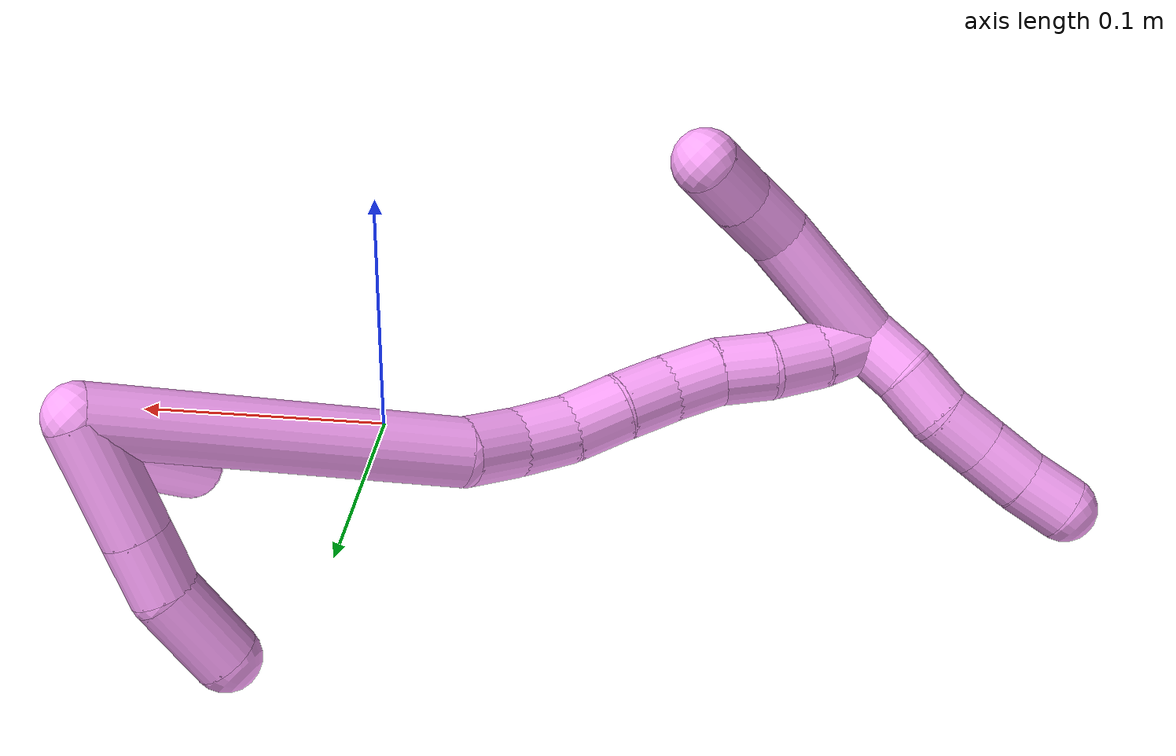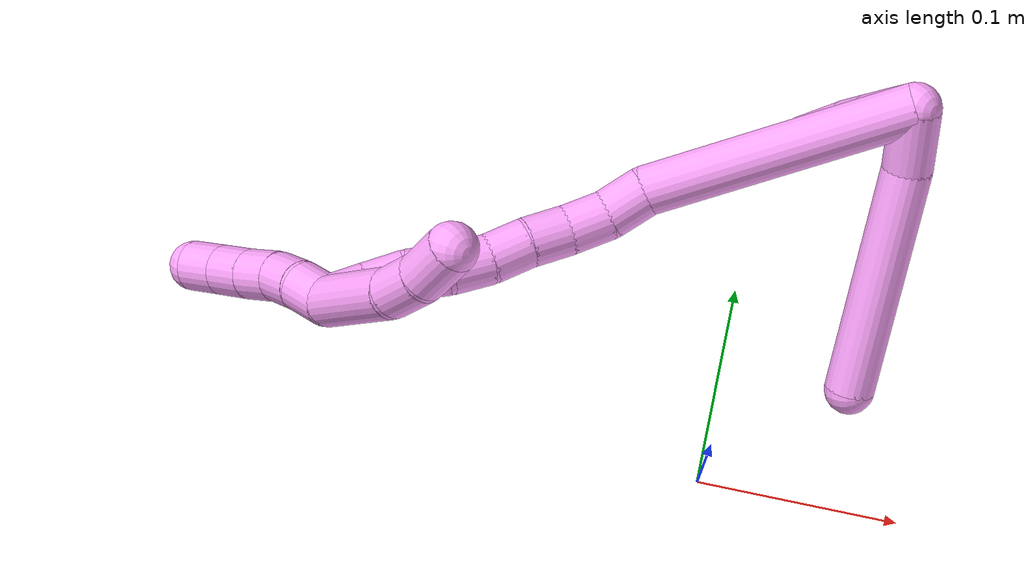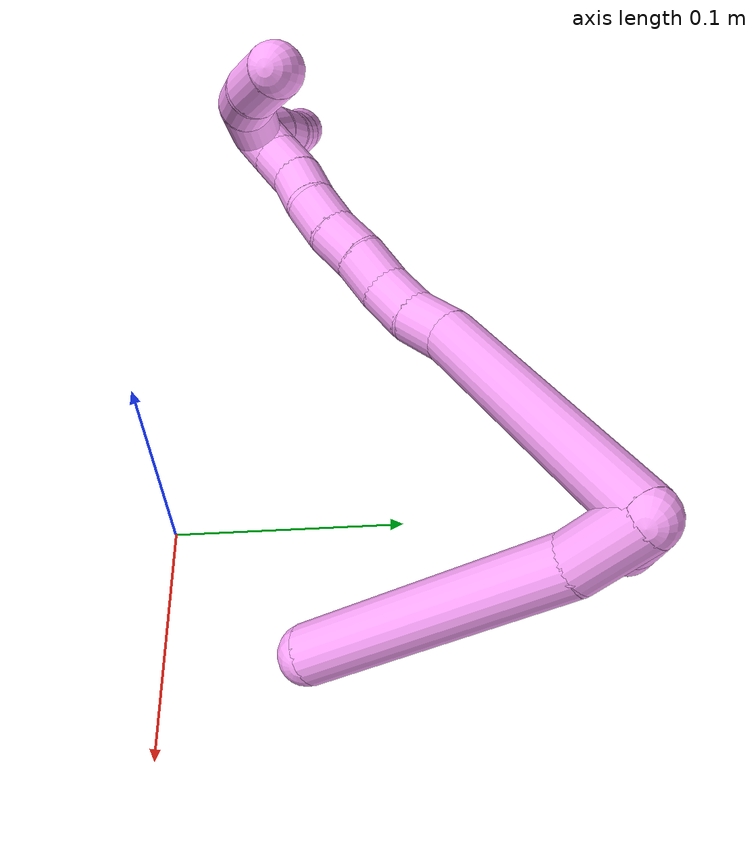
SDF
<sdf version="1.7">
 <world name="default">
  <model name="4">
   <static>0</static>
   <link name="4">
    <collision name="collision-cylinder-e_1_2_8">
     <pose>-0.005884 0.01501 0.002668 -1.39486 -0.368328 0.309664</pose>
     <geometry><cylinder><radius>0.0125</radius><length>0.032683</length></cylinder></geometry>
     <surface>
      <friction><ode><mu>1.16</mu><mu2>1.16</mu2><slip1>0</slip1><slip2>0</slip2></ode></friction>
      <contact><ode><kp>1e+06</kp><kd>1</kd><max_vel>0</max_vel><min_depth>0.001</min_depth></ode></contact>
     </surface>
    </collision>
    <visual name="visual-cylinder-e_1_2_8">
     <pose>-0.005884 0.01501 0.002668 -1.39486 -0.368328 0.309664</pose>
     <geometry><cylinder><radius>0.0125</radius><length>0.032683</length></cylinder></geometry>
     <material><ambient>1 0.65098 0.996078 1</ambient></material>
    </visual>
    <collision name="collision-cylinder-e_2_8_6">
     <pose>-0.044744 0.077991 0.01256 -1.42134 -0.597019 0.517791</pose>
     <geometry><cylinder><radius>0.0125</radius><length>0.117317</length></cylinder></geometry>
     <surface>
      <friction><ode><mu>1.16</mu><mu2>1.16</mu2><slip1>0</slip1><slip2>0</slip2></ode></friction>
      <contact><ode><kp>1e+06</kp><kd>1</kd><max_vel>0</max_vel><min_depth>0.001</min_depth></ode></contact>
     </surface>
    </collision>
    <visual name="visual-cylinder-e_2_8_6">
     <pose>-0.044744 0.077991 0.01256 -1.42134 -0.597019 0.517791</pose>
     <geometry><cylinder><radius>0.0125</radius><length>0.117317</length></cylinder></geometry>
     <material><ambient>1 0.65098 0.996078 1</ambient></material>
    </visual>
    <collision name="collision-cylinder-e_1_2_9">
     <pose>0.002355 0.010486 0.019369 -0.496195 0.106526 -0.027009</pose>
     <geometry><cylinder><radius>0.0125</radius><length>0.044302</length></cylinder></geometry>
     <surface>
      <friction><ode><mu>1.16</mu><mu2>1.16</mu2><slip1>0</slip1><slip2>0</slip2></ode></friction>
      <contact><ode><kp>1e+06</kp><kd>1</kd><max_vel>0</max_vel><min_depth>0.001</min_depth></ode></contact>
     </surface>
    </collision>
    <visual name="visual-cylinder-e_1_2_9">
     <pose>0.002355 0.010486 0.019369 -0.496195 0.106526 -0.027009</pose>
     <geometry><cylinder><radius>0.0125</radius><length>0.044302</length></cylinder></geometry>
     <material><ambient>1 0.65098 0.996078 1</ambient></material>
    </visual>
    <collision name="collision-cylinder-e_2_9_10">
     <pose>0.005912 0.026422 0.048702 -0.500544 0.105395 -0.026966</pose>
     <geometry><cylinder><radius>0.0125</radius><length>0.022842</length></cylinder></geometry>
     <surface>
      <friction><ode><mu>1.16</mu><mu2>1.16</mu2><slip1>0</slip1><slip2>0</slip2></ode></friction>
      <contact><ode><kp>1e+06</kp><kd>1</kd><max_vel>0</max_vel><min_depth>0.001</min_depth></ode></contact>
     </surface>
    </collision>
    <visual name="visual-cylinder-e_2_9_10">
     <pose>0.005912 0.026422 0.048702 -0.500544 0.105395 -0.026966</pose>
     <geometry><cylinder><radius>0.0125</radius><length>0.022842</length></cylinder></geometry>
     <material><ambient>1 0.65098 0.996078 1</ambient></material>
    </visual>
    <collision name="collision-cylinder-e_3_10_5">
     <pose>0.004222 0.038873 0.073245 -0.447636 -0.176931 0.040375</pose>
     <geometry><cylinder><radius>0.0125</radius><length>0.032856</length></cylinder></geometry>
     <surface>
      <friction><ode><mu>1.16</mu><mu2>1.16</mu2><slip1>0</slip1><slip2>0</slip2></ode></friction>
      <contact><ode><kp>1e+06</kp><kd>1</kd><max_vel>0</max_vel><min_depth>0.001</min_depth></ode></contact>
     </surface>
    </collision>
    <visual name="visual-cylinder-e_3_10_5">
     <pose>0.004222 0.038873 0.073245 -0.447636 -0.176931 0.040375</pose>
     <geometry><cylinder><radius>0.0125</radius><length>0.032856</length></cylinder></geometry>
     <material><ambient>1 0.65098 0.996078 1</ambient></material>
    </visual>
    <collision name="collision-cylinder-e_1_2_11">
     <pose>-0.048776 0.001858 0.047021 -0.039484 -0.803329 0.016773</pose>
     <geometry><cylinder><radius>0.0125</radius><length>0.135552</length></cylinder></geometry>
     <surface>
      <friction><ode><mu>1.16</mu><mu2>1.16</mu2><slip1>0</slip1><slip2>0</slip2></ode></friction>
      <contact><ode><kp>1e+06</kp><kd>1</kd><max_vel>0</max_vel><min_depth>0.001</min_depth></ode></contact>
     </surface>
    </collision>
    <visual name="visual-cylinder-e_1_2_11">
     <pose>-0.048776 0.001858 0.047021 -0.039484 -0.803329 0.016773</pose>
     <geometry><cylinder><radius>0.0125</radius><length>0.135552</length></cylinder></geometry>
     <material><ambient>1 0.65098 0.996078 1</ambient></material>
    </visual>
    <collision name="collision-cylinder-e_2_11_12">
     <pose>-0.107225 0.005184 0.098833 -0.297569 -1.09278 0.181811</pose>
     <geometry><cylinder><radius>0.0125</radius><length>0.021786</length></cylinder></geometry>
     <surface>
      <friction><ode><mu>1.16</mu><mu2>1.16</mu2><slip1>0</slip1><slip2>0</slip2></ode></friction>
      <contact><ode><kp>1e+06</kp><kd>1</kd><max_vel>0</max_vel><min_depth>0.001</min_depth></ode></contact>
     </surface>
    </collision>
    <visual name="visual-cylinder-e_2_11_12">
     <pose>-0.107225 0.005184 0.098833 -0.297569 -1.09278 0.181811</pose>
     <geometry><cylinder><radius>0.0125</radius><length>0.021786</length></cylinder></geometry>
     <material><ambient>1 0.65098 0.996078 1</ambient></material>
    </visual>
    <collision name="collision-cylinder-e_3_12_13">
     <pose>-0.126252 0.005659 0.108448 0.203241 -1.08624 -0.122961</pose>
     <geometry><cylinder><radius>0.0125</radius><length>0.021145</length></cylinder></geometry>
     <surface>
      <friction><ode><mu>1.16</mu><mu2>1.16</mu2><slip1>0</slip1><slip2>0</slip2></ode></friction>
      <contact><ode><kp>1e+06</kp><kd>1</kd><max_vel>0</max_vel><min_depth>0.001</min_depth></ode></contact>
     </surface>
    </collision>
    <visual name="visual-cylinder-e_3_12_13">
     <pose>-0.126252 0.005659 0.108448 0.203241 -1.08624 -0.122961</pose>
     <geometry><cylinder><radius>0.0125</radius><length>0.021145</length></cylinder></geometry>
     <material><ambient>1 0.65098 0.996078 1</ambient></material>
    </visual>
    <collision name="collision-cylinder-e_4_13_14">
     <pose>-0.145119 0.002099 0.116908 0.614604 -1.1331 -0.398391</pose>
     <geometry><cylinder><radius>0.0125</radius><length>0.021003</length></cylinder></geometry>
     <surface>
      <friction><ode><mu>1.16</mu><mu2>1.16</mu2><slip1>0</slip1><slip2>0</slip2></ode></friction>
      <contact><ode><kp>1e+06</kp><kd>1</kd><max_vel>0</max_vel><min_depth>0.001</min_depth></ode></contact>
     </surface>
    </collision>
    <visual name="visual-cylinder-e_4_13_14">
     <pose>-0.145119 0.002099 0.116908 0.614604 -1.1331 -0.398391</pose>
     <geometry><cylinder><radius>0.0125</radius><length>0.021003</length></cylinder></geometry>
     <material><ambient>1 0.65098 0.996078 1</ambient></material>
    </visual>
    <collision name="collision-cylinder-e_5_14_15">
     <pose>-0.163978 -0.001654 0.124106 0.321409 -1.18883 -0.218281</pose>
     <geometry><cylinder><radius>0.0125</radius><length>0.020145</length></cylinder></geometry>
     <surface>
      <friction><ode><mu>1.16</mu><mu2>1.16</mu2><slip1>0</slip1><slip2>0</slip2></ode></friction>
      <contact><ode><kp>1e+06</kp><kd>1</kd><max_vel>0</max_vel><min_depth>0.001</min_depth></ode></contact>
     </surface>
    </collision>
    <visual name="visual-cylinder-e_5_14_15">
     <pose>-0.163978 -0.001654 0.124106 0.321409 -1.18883 -0.218281</pose>
     <geometry><cylinder><radius>0.0125</radius><length>0.020145</length></cylinder></geometry>
     <material><ambient>1 0.65098 0.996078 1</ambient></material>
    </visual>
    <collision name="collision-cylinder-e_6_15_16">
     <pose>-0.182191 -0.005369 0.131853 0.543623 -1.06689 -0.326259</pose>
     <geometry><cylinder><radius>0.0125</radius><length>0.020251</length></cylinder></geometry>
     <surface>
      <friction><ode><mu>1.16</mu><mu2>1.16</mu2><slip1>0</slip1><slip2>0</slip2></ode></friction>
      <contact><ode><kp>1e+06</kp><kd>1</kd><max_vel>0</max_vel><min_depth>0.001</min_depth></ode></contact>
     </surface>
    </collision>
    <visual name="visual-cylinder-e_6_15_16">
     <pose>-0.182191 -0.005369 0.131853 0.543623 -1.06689 -0.326259</pose>
     <geometry><cylinder><radius>0.0125</radius><length>0.020251</length></cylinder></geometry>
     <material><ambient>1 0.65098 0.996078 1</ambient></material>
    </visual>
    <collision name="collision-cylinder-e_7_16_17">
     <pose>-0.198681 -0.010398 0.142072 0.392766 -0.862288 -0.182525</pose>
     <geometry><cylinder><radius>0.0125</radius><length>0.020077</length></cylinder></geometry>
     <surface>
      <friction><ode><mu>1.16</mu><mu2>1.16</mu2><slip1>0</slip1><slip2>0</slip2></ode></friction>
      <contact><ode><kp>1e+06</kp><kd>1</kd><max_vel>0</max_vel><min_depth>0.001</min_depth></ode></contact>
     </surface>
    </collision>
    <visual name="visual-cylinder-e_7_16_17">
     <pose>-0.198681 -0.010398 0.142072 0.392766 -0.862288 -0.182525</pose>
     <geometry><cylinder><radius>0.0125</radius><length>0.020077</length></cylinder></geometry>
     <material><ambient>1 0.65098 0.996078 1</ambient></material>
    </visual>
    <collision name="collision-cylinder-e_8_17_18">
     <pose>-0.214942 -0.014244 0.15297 0.269992 -1.04214 -0.155605</pose>
     <geometry><cylinder><radius>0.0125</radius><length>0.020008</length></cylinder></geometry>
     <surface>
      <friction><ode><mu>1.16</mu><mu2>1.16</mu2><slip1>0</slip1><slip2>0</slip2></ode></friction>
      <contact><ode><kp>1e+06</kp><kd>1</kd><max_vel>0</max_vel><min_depth>0.001</min_depth></ode></contact>
     </surface>
    </collision>
    <visual name="visual-cylinder-e_8_17_18">
     <pose>-0.214942 -0.014244 0.15297 0.269992 -1.04214 -0.155605</pose>
     <geometry><cylinder><radius>0.0125</radius><length>0.020008</length></cylinder></geometry>
     <material><ambient>1 0.65098 0.996078 1</ambient></material>
    </visual>
    <collision name="collision-cylinder-e_9_18_1">
     <pose>-0.232645 -0.017559 0.16161 0.480566 -1.13152 -0.308698</pose>
     <geometry><cylinder><radius>0.0125</radius><length>0.020033</length></cylinder></geometry>
     <surface>
      <friction><ode><mu>1.16</mu><mu2>1.16</mu2><slip1>0</slip1><slip2>0</slip2></ode></friction>
      <contact><ode><kp>1e+06</kp><kd>1</kd><max_vel>0</max_vel><min_depth>0.001</min_depth></ode></contact>
     </surface>
    </collision>
    <visual name="visual-cylinder-e_9_18_1">
     <pose>-0.232645 -0.017559 0.16161 0.480566 -1.13152 -0.308698</pose>
     <geometry><cylinder><radius>0.0125</radius><length>0.020033</length></cylinder></geometry>
     <material><ambient>1 0.65098 0.996078 1</ambient></material>
    </visual>
    <collision name="collision-cylinder-e_1_1_19">
     <pose>-0.237656 -0.027914 0.140717 2.81393 0.154371 0.875179</pose>
     <geometry><cylinder><radius>0.0125</radius><length>0.052739</length></cylinder></geometry>
     <surface>
      <friction><ode><mu>1.16</mu><mu2>1.16</mu2><slip1>0</slip1><slip2>0</slip2></ode></friction>
      <contact><ode><kp>1e+06</kp><kd>1</kd><max_vel>0</max_vel><min_depth>0.001</min_depth></ode></contact>
     </surface>
    </collision>
    <visual name="visual-cylinder-e_1_1_19">
     <pose>-0.237656 -0.027914 0.140717 2.81393 0.154371 0.875179</pose>
     <geometry><cylinder><radius>0.0125</radius><length>0.052739</length></cylinder></geometry>
     <material><ambient>1 0.65098 0.996078 1</ambient></material>
    </visual>
    <collision name="collision-cylinder-e_2_19_20">
     <pose>-0.229515 -0.041139 0.106636 2.66662 0.368499 1.31227</pose>
     <geometry><cylinder><radius>0.0125</radius><length>0.022688</length></cylinder></geometry>
     <surface>
      <friction><ode><mu>1.16</mu><mu2>1.16</mu2><slip1>0</slip1><slip2>0</slip2></ode></friction>
      <contact><ode><kp>1e+06</kp><kd>1</kd><max_vel>0</max_vel><min_depth>0.001</min_depth></ode></contact>
     </surface>
    </collision>
    <visual name="visual-cylinder-e_2_19_20">
     <pose>-0.229515 -0.041139 0.106636 2.66662 0.368499 1.31227</pose>
     <geometry><cylinder><radius>0.0125</radius><length>0.022688</length></cylinder></geometry>
     <material><ambient>1 0.65098 0.996078 1</ambient></material>
    </visual>
    <collision name="collision-cylinder-e_3_20_4">
     <pose>-0.219786 -0.052957 0.088834 2.44786 0.477187 1.18455</pose>
     <geometry><cylinder><radius>0.0125</radius><length>0.024573</length></cylinder></geometry>
     <surface>
      <friction><ode><mu>1.16</mu><mu2>1.16</mu2><slip1>0</slip1><slip2>0</slip2></ode></friction>
      <contact><ode><kp>1e+06</kp><kd>1</kd><max_vel>0</max_vel><min_depth>0.001</min_depth></ode></contact>
     </surface>
    </collision>
    <visual name="visual-cylinder-e_3_20_4">
     <pose>-0.219786 -0.052957 0.088834 2.44786 0.477187 1.18455</pose>
     <geometry><cylinder><radius>0.0125</radius><length>0.024573</length></cylinder></geometry>
     <material><ambient>1 0.65098 0.996078 1</ambient></material>
    </visual>
    <collision name="collision-cylinder-e_1_1_21">
     <pose>-0.241579 -0.020788 0.175306 0.126374 0.013194 0.000835</pose>
     <geometry><cylinder><radius>0.0125</radius><length>0.02</length></cylinder></geometry>
     <surface>
      <friction><ode><mu>1.16</mu><mu2>1.16</mu2><slip1>0</slip1><slip2>0</slip2></ode></friction>
      <contact><ode><kp>1e+06</kp><kd>1</kd><max_vel>0</max_vel><min_depth>0.001</min_depth></ode></contact>
     </surface>
    </collision>
    <visual name="visual-cylinder-e_1_1_21">
     <pose>-0.241579 -0.020788 0.175306 0.126374 0.013194 0.000835</pose>
     <geometry><cylinder><radius>0.0125</radius><length>0.02</length></cylinder></geometry>
     <material><ambient>1 0.65098 0.996078 1</ambient></material>
    </visual>
    <collision name="collision-cylinder-e_2_21_22">
     <pose>-0.241243 -0.021286 0.195195 -0.07634 0.020338 -0.000777</pose>
     <geometry><cylinder><radius>0.0125</radius><length>0.02</length></cylinder></geometry>
     <surface>
      <friction><ode><mu>1.16</mu><mu2>1.16</mu2><slip1>0</slip1><slip2>0</slip2></ode></friction>
      <contact><ode><kp>1e+06</kp><kd>1</kd><max_vel>0</max_vel><min_depth>0.001</min_depth></ode></contact>
     </surface>
    </collision>
    <visual name="visual-cylinder-e_2_21_22">
     <pose>-0.241243 -0.021286 0.195195 -0.07634 0.020338 -0.000777</pose>
     <geometry><cylinder><radius>0.0125</radius><length>0.02</length></cylinder></geometry>
     <material><ambient>1 0.65098 0.996078 1</ambient></material>
    </visual>
    <collision name="collision-cylinder-e_3_22_23">
     <pose>-0.243138 -0.019608 0.214898 -0.093784 -0.211415 0.009958</pose>
     <geometry><cylinder><radius>0.0125</radius><length>0.02</length></cylinder></geometry>
     <surface>
      <friction><ode><mu>1.16</mu><mu2>1.16</mu2><slip1>0</slip1><slip2>0</slip2></ode></friction>
      <contact><ode><kp>1e+06</kp><kd>1</kd><max_vel>0</max_vel><min_depth>0.001</min_depth></ode></contact>
     </surface>
    </collision>
    <visual name="visual-cylinder-e_3_22_23">
     <pose>-0.243138 -0.019608 0.214898 -0.093784 -0.211415 0.009958</pose>
     <geometry><cylinder><radius>0.0125</radius><length>0.02</length></cylinder></geometry>
     <material><ambient>1 0.65098 0.996078 1</ambient></material>
    </visual>
    <collision name="collision-cylinder-e_4_23_24">
     <pose>-0.247114 -0.018148 0.234439 -0.055482 -0.188814 0.005255</pose>
     <geometry><cylinder><radius>0.0125</radius><length>0.02</length></cylinder></geometry>
     <surface>
      <friction><ode><mu>1.16</mu><mu2>1.16</mu2><slip1>0</slip1><slip2>0</slip2></ode></friction>
      <contact><ode><kp>1e+06</kp><kd>1</kd><max_vel>0</max_vel><min_depth>0.001</min_depth></ode></contact>
     </surface>
    </collision>
    <visual name="visual-cylinder-e_4_23_24">
     <pose>-0.247114 -0.018148 0.234439 -0.055482 -0.188814 0.005255</pose>
     <geometry><cylinder><radius>0.0125</radius><length>0.02</length></cylinder></geometry>
     <material><ambient>1 0.65098 0.996078 1</ambient></material>
    </visual>
    <collision name="collision-cylinder-e_5_24_3">
     <pose>-0.251457 -0.017648 0.253938 0.004587 -0.249217 -0.000575</pose>
     <geometry><cylinder><radius>0.0125</radius><length>0.02</length></cylinder></geometry>
     <surface>
      <friction><ode><mu>1.16</mu><mu2>1.16</mu2><slip1>0</slip1><slip2>0</slip2></ode></friction>
      <contact><ode><kp>1e+06</kp><kd>1</kd><max_vel>0</max_vel><min_depth>0.001</min_depth></ode></contact>
     </surface>
    </collision>
    <visual name="visual-cylinder-e_5_24_3">
     <pose>-0.251457 -0.017648 0.253938 0.004587 -0.249217 -0.000575</pose>
     <geometry><cylinder><radius>0.0125</radius><length>0.02</length></cylinder></geometry>
     <material><ambient>1 0.65098 0.996078 1</ambient></material>
    </visual>
    <collision name="collision-sphere-3">
     <pose>-0.253924 -0.017692 0.263629 0 -0 0</pose>
     <geometry><sphere><radius>0.0125</radius></sphere></geometry>
     <surface>
      <friction><ode><mu>1.16</mu><mu2>1.16</mu2><slip1>0</slip1><slip2>0</slip2></ode></friction>
      <contact><ode><kp>1e+06</kp><kd>1</kd><max_vel>0</max_vel><min_depth>0.001</min_depth></ode></contact>
     </surface>
    </collision>
    <visual name="visual-sphere-3">
     <pose>-0.253924 -0.017692 0.263629 0 -0 0</pose>
     <geometry><sphere><radius>0.0125</radius></sphere></geometry>
     <material><ambient>1 0.65098 0.996078 1</ambient></material>
    </visual>
    <collision name="collision-sphere-24">
     <pose>-0.248991 -0.017603 0.244247 0 -0 0</pose>
     <geometry><sphere><radius>0.0125</radius></sphere></geometry>
     <surface>
      <friction><ode><mu>1.16</mu><mu2>1.16</mu2><slip1>0</slip1><slip2>0</slip2></ode></friction>
      <contact><ode><kp>1e+06</kp><kd>1</kd><max_vel>0</max_vel><min_depth>0.001</min_depth></ode></contact>
     </surface>
    </collision>
    <visual name="visual-sphere-24">
     <pose>-0.248991 -0.017603 0.244247 0 -0 0</pose>
     <geometry><sphere><radius>0.0125</radius></sphere></geometry>
     <material><ambient>1 0.65098 0.996078 1</ambient></material>
    </visual>
    <collision name="collision-sphere-23">
     <pose>-0.245237 -0.018692 0.224632 0 -0 0</pose>
     <geometry><sphere><radius>0.0125</radius></sphere></geometry>
     <surface>
      <friction><ode><mu>1.16</mu><mu2>1.16</mu2><slip1>0</slip1><slip2>0</slip2></ode></friction>
      <contact><ode><kp>1e+06</kp><kd>1</kd><max_vel>0</max_vel><min_depth>0.001</min_depth></ode></contact>
     </surface>
    </collision>
    <visual name="visual-sphere-23">
     <pose>-0.245237 -0.018692 0.224632 0 -0 0</pose>
     <geometry><sphere><radius>0.0125</radius></sphere></geometry>
     <material><ambient>1 0.65098 0.996078 1</ambient></material>
    </visual>
    <collision name="collision-sphere-22">
     <pose>-0.24104 -0.020524 0.205164 0 -0 0</pose>
     <geometry><sphere><radius>0.0125</radius></sphere></geometry>
     <surface>
      <friction><ode><mu>1.16</mu><mu2>1.16</mu2><slip1>0</slip1><slip2>0</slip2></ode></friction>
      <contact><ode><kp>1e+06</kp><kd>1</kd><max_vel>0</max_vel><min_depth>0.001</min_depth></ode></contact>
     </surface>
    </collision>
    <visual name="visual-sphere-22">
     <pose>-0.24104 -0.020524 0.205164 0 -0 0</pose>
     <geometry><sphere><radius>0.0125</radius></sphere></geometry>
     <material><ambient>1 0.65098 0.996078 1</ambient></material>
    </visual>
    <collision name="collision-sphere-21">
     <pose>-0.241447 -0.022049 0.185226 0 -0 0</pose>
     <geometry><sphere><radius>0.0125</radius></sphere></geometry>
     <surface>
      <friction><ode><mu>1.16</mu><mu2>1.16</mu2><slip1>0</slip1><slip2>0</slip2></ode></friction>
      <contact><ode><kp>1e+06</kp><kd>1</kd><max_vel>0</max_vel><min_depth>0.001</min_depth></ode></contact>
     </surface>
    </collision>
    <visual name="visual-sphere-21">
     <pose>-0.241447 -0.022049 0.185226 0 -0 0</pose>
     <geometry><sphere><radius>0.0125</radius></sphere></geometry>
     <material><ambient>1 0.65098 0.996078 1</ambient></material>
    </visual>
    <collision name="collision-sphere-4">
     <pose>-0.214143 -0.059935 0.080443 0 -0 0</pose>
     <geometry><sphere><radius>0.0125</radius></sphere></geometry>
     <surface>
      <friction><ode><mu>1.16</mu><mu2>1.16</mu2><slip1>0</slip1><slip2>0</slip2></ode></friction>
      <contact><ode><kp>1e+06</kp><kd>1</kd><max_vel>0</max_vel><min_depth>0.001</min_depth></ode></contact>
     </surface>
    </collision>
    <visual name="visual-sphere-4">
     <pose>-0.214143 -0.059935 0.080443 0 -0 0</pose>
     <geometry><sphere><radius>0.0125</radius></sphere></geometry>
     <material><ambient>1 0.65098 0.996078 1</ambient></material>
    </visual>
    <collision name="collision-sphere-20">
     <pose>-0.225429 -0.045978 0.097225 0 -0 0</pose>
     <geometry><sphere><radius>0.0125</radius></sphere></geometry>
     <surface>
      <friction><ode><mu>1.16</mu><mu2>1.16</mu2><slip1>0</slip1><slip2>0</slip2></ode></friction>
      <contact><ode><kp>1e+06</kp><kd>1</kd><max_vel>0</max_vel><min_depth>0.001</min_depth></ode></contact>
     </surface>
    </collision>
    <visual name="visual-sphere-20">
     <pose>-0.225429 -0.045978 0.097225 0 -0 0</pose>
     <geometry><sphere><radius>0.0125</radius></sphere></geometry>
     <material><ambient>1 0.65098 0.996078 1</ambient></material>
    </visual>
    <collision name="collision-sphere-5">
     <pose>0.00133 0.045872 0.087823 0 -0 0</pose>
     <geometry><sphere><radius>0.0125</radius></sphere></geometry>
     <surface>
      <friction><ode><mu>1.16</mu><mu2>1.16</mu2><slip1>0</slip1><slip2>0</slip2></ode></friction>
      <contact><ode><kp>1e+06</kp><kd>1</kd><max_vel>0</max_vel><min_depth>0.001</min_depth></ode></contact>
     </surface>
    </collision>
    <visual name="visual-sphere-5">
     <pose>0.00133 0.045872 0.087823 0 -0 0</pose>
     <geometry><sphere><radius>0.0125</radius></sphere></geometry>
     <material><ambient>1 0.65098 0.996078 1</ambient></material>
    </visual>
    <collision name="collision-sphere-10">
     <pose>0.007113 0.031873 0.058667 0 -0 0</pose>
     <geometry><sphere><radius>0.0125</radius></sphere></geometry>
     <surface>
      <friction><ode><mu>1.16</mu><mu2>1.16</mu2><slip1>0</slip1><slip2>0</slip2></ode></friction>
      <contact><ode><kp>1e+06</kp><kd>1</kd><max_vel>0</max_vel><min_depth>0.001</min_depth></ode></contact>
     </surface>
    </collision>
    <visual name="visual-sphere-10">
     <pose>0.007113 0.031873 0.058667 0 -0 0</pose>
     <geometry><sphere><radius>0.0125</radius></sphere></geometry>
     <material><ambient>1 0.65098 0.996078 1</ambient></material>
    </visual>
    <collision name="collision-sphere-6">
     <pose>-0.077721 0.125962 0.019783 0 -0 0</pose>
     <geometry><sphere><radius>0.0125</radius></sphere></geometry>
     <surface>
      <friction><ode><mu>1.16</mu><mu2>1.16</mu2><slip1>0</slip1><slip2>0</slip2></ode></friction>
      <contact><ode><kp>1e+06</kp><kd>1</kd><max_vel>0</max_vel><min_depth>0.001</min_depth></ode></contact>
     </surface>
    </collision>
    <visual name="visual-sphere-6">
     <pose>-0.077721 0.125962 0.019783 0 -0 0</pose>
     <geometry><sphere><radius>0.0125</radius></sphere></geometry>
     <material><ambient>1 0.65098 0.996078 1</ambient></material>
    </visual>
    <collision name="collision-sphere-9">
     <pose>0.00471 0.020972 0.038738 0 -0 0</pose>
     <geometry><sphere><radius>0.0125</radius></sphere></geometry>
     <surface>
      <friction><ode><mu>1.16</mu><mu2>1.16</mu2><slip1>0</slip1><slip2>0</slip2></ode></friction>
      <contact><ode><kp>1e+06</kp><kd>1</kd><max_vel>0</max_vel><min_depth>0.001</min_depth></ode></contact>
     </surface>
    </collision>
    <visual name="visual-sphere-9">
     <pose>0.00471 0.020972 0.038738 0 -0 0</pose>
     <geometry><sphere><radius>0.0125</radius></sphere></geometry>
     <material><ambient>1 0.65098 0.996078 1</ambient></material>
    </visual>
    <collision name="collision-sphere-2">
     <geometry><sphere><radius>0.0125</radius></sphere></geometry>
     <surface>
      <friction><ode><mu>1.16</mu><mu2>1.16</mu2><slip1>0</slip1><slip2>0</slip2></ode></friction>
      <contact><ode><kp>1e+06</kp><kd>1</kd><max_vel>0</max_vel><min_depth>0.001</min_depth></ode></contact>
     </surface>
    </collision>
    <visual name="visual-sphere-2">
     <geometry><sphere><radius>0.0125</radius></sphere></geometry>
     <material><ambient>1 0.65098 0.996078 1</ambient></material>
    </visual>
    <collision name="collision-sphere-19">
     <pose>-0.233602 -0.036299 0.116048 0 -0 0</pose>
     <geometry><sphere><radius>0.0125</radius></sphere></geometry>
     <surface>
      <friction><ode><mu>1.16</mu><mu2>1.16</mu2><slip1>0</slip1><slip2>0</slip2></ode></friction>
      <contact><ode><kp>1e+06</kp><kd>1</kd><max_vel>0</max_vel><min_depth>0.001</min_depth></ode></contact>
     </surface>
    </collision>
    <visual name="visual-sphere-19">
     <pose>-0.233602 -0.036299 0.116048 0 -0 0</pose>
     <geometry><sphere><radius>0.0125</radius></sphere></geometry>
     <material><ambient>1 0.65098 0.996078 1</ambient></material>
    </visual>
    <collision name="collision-sphere-8">
     <pose>-0.011768 0.03002 0.005337 0 -0 0</pose>
     <geometry><sphere><radius>0.0125</radius></sphere></geometry>
     <surface>
      <friction><ode><mu>1.16</mu><mu2>1.16</mu2><slip1>0</slip1><slip2>0</slip2></ode></friction>
      <contact><ode><kp>1e+06</kp><kd>1</kd><max_vel>0</max_vel><min_depth>0.001</min_depth></ode></contact>
     </surface>
    </collision>
    <visual name="visual-sphere-8">
     <pose>-0.011768 0.03002 0.005337 0 -0 0</pose>
     <geometry><sphere><radius>0.0125</radius></sphere></geometry>
     <material><ambient>1 0.65098 0.996078 1</ambient></material>
    </visual>
    <collision name="collision-sphere-11">
     <pose>-0.097553 0.003715 0.094042 0 -0 0</pose>
     <geometry><sphere><radius>0.0125</radius></sphere></geometry>
     <surface>
      <friction><ode><mu>1.16</mu><mu2>1.16</mu2><slip1>0</slip1><slip2>0</slip2></ode></friction>
      <contact><ode><kp>1e+06</kp><kd>1</kd><max_vel>0</max_vel><min_depth>0.001</min_depth></ode></contact>
     </surface>
    </collision>
    <visual name="visual-sphere-11">
     <pose>-0.097553 0.003715 0.094042 0 -0 0</pose>
     <geometry><sphere><radius>0.0125</radius></sphere></geometry>
     <material><ambient>1 0.65098 0.996078 1</ambient></material>
    </visual>
    <collision name="collision-sphere-12">
     <pose>-0.116897 0.006654 0.103624 0 -0 0</pose>
     <geometry><sphere><radius>0.0125</radius></sphere></geometry>
     <surface>
      <friction><ode><mu>1.16</mu><mu2>1.16</mu2><slip1>0</slip1><slip2>0</slip2></ode></friction>
      <contact><ode><kp>1e+06</kp><kd>1</kd><max_vel>0</max_vel><min_depth>0.001</min_depth></ode></contact>
     </surface>
    </collision>
    <visual name="visual-sphere-12">
     <pose>-0.116897 0.006654 0.103624 0 -0 0</pose>
     <geometry><sphere><radius>0.0125</radius></sphere></geometry>
     <material><ambient>1 0.65098 0.996078 1</ambient></material>
    </visual>
    <collision name="collision-sphere-13">
     <pose>-0.135608 0.004665 0.113271 0 -0 0</pose>
     <geometry><sphere><radius>0.0125</radius></sphere></geometry>
     <surface>
      <friction><ode><mu>1.16</mu><mu2>1.16</mu2><slip1>0</slip1><slip2>0</slip2></ode></friction>
      <contact><ode><kp>1e+06</kp><kd>1</kd><max_vel>0</max_vel><min_depth>0.001</min_depth></ode></contact>
     </surface>
    </collision>
    <visual name="visual-sphere-13">
     <pose>-0.135608 0.004665 0.113271 0 -0 0</pose>
     <geometry><sphere><radius>0.0125</radius></sphere></geometry>
     <material><ambient>1 0.65098 0.996078 1</ambient></material>
    </visual>
    <collision name="collision-sphere-14">
     <pose>-0.154631 -0.000468 0.120544 0 -0 0</pose>
     <geometry><sphere><radius>0.0125</radius></sphere></geometry>
     <surface>
      <friction><ode><mu>1.16</mu><mu2>1.16</mu2><slip1>0</slip1><slip2>0</slip2></ode></friction>
      <contact><ode><kp>1e+06</kp><kd>1</kd><max_vel>0</max_vel><min_depth>0.001</min_depth></ode></contact>
     </surface>
    </collision>
    <visual name="visual-sphere-14">
     <pose>-0.154631 -0.000468 0.120544 0 -0 0</pose>
     <geometry><sphere><radius>0.0125</radius></sphere></geometry>
     <material><ambient>1 0.65098 0.996078 1</ambient></material>
    </visual>
    <collision name="collision-sphere-15">
     <pose>-0.173324 -0.00284 0.127669 0 -0 0</pose>
     <geometry><sphere><radius>0.0125</radius></sphere></geometry>
     <surface>
      <friction><ode><mu>1.16</mu><mu2>1.16</mu2><slip1>0</slip1><slip2>0</slip2></ode></friction>
      <contact><ode><kp>1e+06</kp><kd>1</kd><max_vel>0</max_vel><min_depth>0.001</min_depth></ode></contact>
     </surface>
    </collision>
    <visual name="visual-sphere-15">
     <pose>-0.173324 -0.00284 0.127669 0 -0 0</pose>
     <geometry><sphere><radius>0.0125</radius></sphere></geometry>
     <material><ambient>1 0.65098 0.996078 1</ambient></material>
    </visual>
    <collision name="collision-sphere-16">
     <pose>-0.191058 -0.007898 0.136037 0 -0 0</pose>
     <geometry><sphere><radius>0.0125</radius></sphere></geometry>
     <surface>
      <friction><ode><mu>1.16</mu><mu2>1.16</mu2><slip1>0</slip1><slip2>0</slip2></ode></friction>
      <contact><ode><kp>1e+06</kp><kd>1</kd><max_vel>0</max_vel><min_depth>0.001</min_depth></ode></contact>
     </surface>
    </collision>
    <visual name="visual-sphere-16">
     <pose>-0.191058 -0.007898 0.136037 0 -0 0</pose>
     <geometry><sphere><radius>0.0125</radius></sphere></geometry>
     <material><ambient>1 0.65098 0.996078 1</ambient></material>
    </visual>
    <collision name="collision-sphere-17">
     <pose>-0.206303 -0.012898 0.148107 0 -0 0</pose>
     <geometry><sphere><radius>0.0125</radius></sphere></geometry>
     <surface>
      <friction><ode><mu>1.16</mu><mu2>1.16</mu2><slip1>0</slip1><slip2>0</slip2></ode></friction>
      <contact><ode><kp>1e+06</kp><kd>1</kd><max_vel>0</max_vel><min_depth>0.001</min_depth></ode></contact>
     </surface>
    </collision>
    <visual name="visual-sphere-17">
     <pose>-0.206303 -0.012898 0.148107 0 -0 0</pose>
     <geometry><sphere><radius>0.0125</radius></sphere></geometry>
     <material><ambient>1 0.65098 0.996078 1</ambient></material>
    </visual>
    <collision name="collision-sphere-18">
     <pose>-0.22358 -0.01559 0.157833 0 -0 0</pose>
     <geometry><sphere><radius>0.0125</radius></sphere></geometry>
     <surface>
      <friction><ode><mu>1.16</mu><mu2>1.16</mu2><slip1>0</slip1><slip2>0</slip2></ode></friction>
      <contact><ode><kp>1e+06</kp><kd>1</kd><max_vel>0</max_vel><min_depth>0.001</min_depth></ode></contact>
     </surface>
    </collision>
    <visual name="visual-sphere-18">
     <pose>-0.22358 -0.01559 0.157833 0 -0 0</pose>
     <geometry><sphere><radius>0.0125</radius></sphere></geometry>
     <material><ambient>1 0.65098 0.996078 1</ambient></material>
    </visual>
    <collision name="collision-sphere-1">
     <pose>-0.241711 -0.019528 0.165387 0 -0 0</pose>
     <geometry><sphere><radius>0.0125</radius></sphere></geometry>
     <surface>
      <friction><ode><mu>1.16</mu><mu2>1.16</mu2><slip1>0</slip1><slip2>0</slip2></ode></friction>
      <contact><ode><kp>1e+06</kp><kd>1</kd><max_vel>0</max_vel><min_depth>0.001</min_depth></ode></contact>
     </surface>
    </collision>
    <visual name="visual-sphere-1">
     <pose>-0.241711 -0.019528 0.165387 0 -0 0</pose>
     <geometry><sphere><radius>0.0125</radius></sphere></geometry>
     <material><ambient>1 0.65098 0.996078 1</ambient></material>
    </visual>
    <inertial>
     <pose>-0.116405 0.007827 0.089378 0 -0 0</pose>
     <mass>0.75</mass>
     <inertia><ixx>0.00034</ixx><ixy>0</ixy><ixz>0</ixz><iyy>0.000377</iyy><iyz>0</iyz><izz>0.00014</izz></inertia>
    </inertial>
   </link>
   <pose>0.064263 0.178724 0.100294 -2.24546 0.235766 1.01537</pose>
  </model>
 </world>
</sdf>
